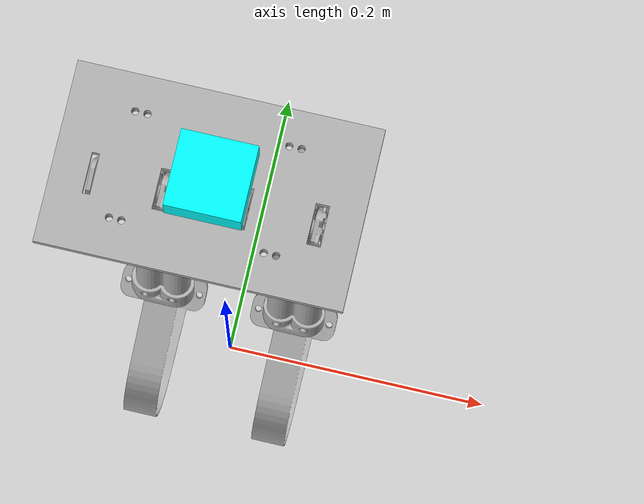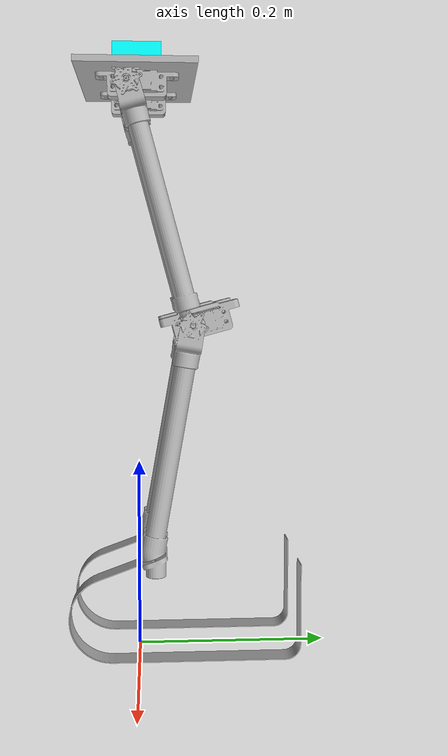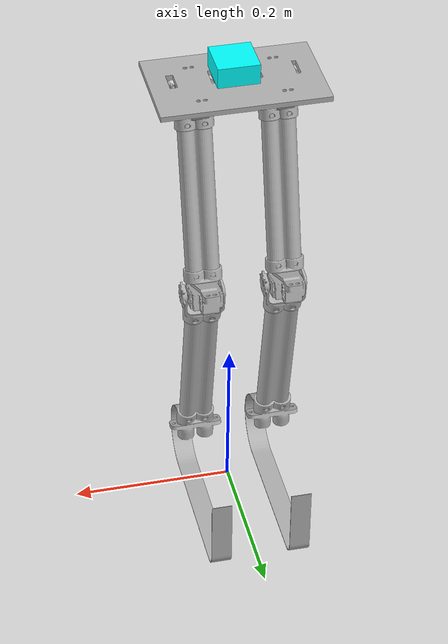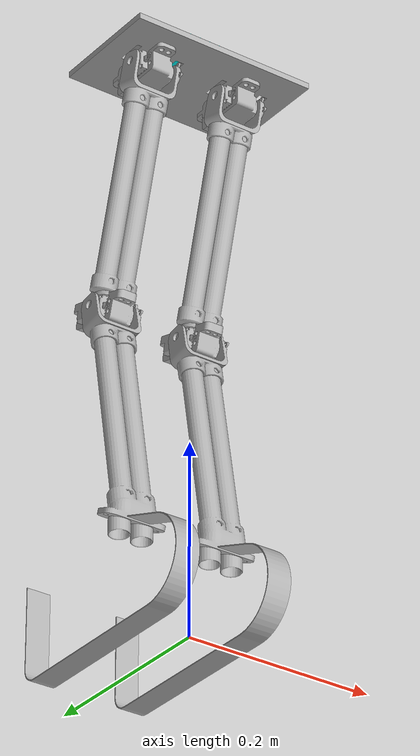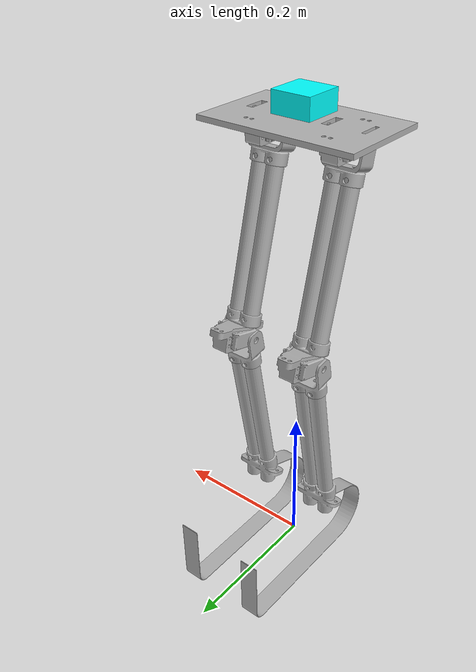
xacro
<?xml version="1.0" ?>
<robot name="pguin" xmlns:xacro="http://www.ros.org/wiki/xacro">

<xacro:include filename="$(find pguin_description)/urdf/materials.xacro" />
<xacro:include filename="$(find pguin_description)/urdf/pguin.trans" />
<xacro:include filename="$(find pguin_description)/urdf/pguin.gazebo" />

<link name="base_link">
  <inertial>
    <origin xyz="-0.0018364831356047012 0.00017651104964880673 0.6032172976873532" rpy="0 0 0"/>
    <mass value="0.2"/>
    <inertia ixx="0.001424" iyy="0.003857" izz="0.005273" ixy="-2e-06" iyz="-0.0" ixz="0.0"/>
  </inertial>
  <visual>
    <origin xyz="0 0 0" rpy="0 0 0"/>
    <geometry>
      <mesh filename="package://pguin_description/meshes/base_link.stl" scale="0.001 0.001 0.001"/>
    </geometry>
    <material name="silver"/>
  </visual>
  <collision>
    <origin xyz="0 0 0" rpy="0 0 0"/>
    <geometry>
      <mesh filename="package://pguin_description/meshes/base_link.stl" scale="0.001 0.001 0.001"/>
    </geometry>
  </collision>
</link>

<link name="Right_Hip_Joint_1">
  <inertial>
    <origin xyz="-0.024906436199168287 0.005774140785141436 -0.021430165788386857" rpy="0 0 0"/>
    <mass value="0.13224884273497764"/>
    <inertia ixx="3e-05" iyy="6.2e-05" izz="4.9e-05" ixy="1e-06" iyz="4e-06" ixz="-4e-06"/>
  </inertial>
  <visual>
    <origin xyz="0.026981 0.009401 -0.590042" rpy="0 0 0"/>
    <geometry>
      <mesh filename="package://pguin_description/meshes/Right_Hip_Joint_1.stl" scale="0.001 0.001 0.001"/>
    </geometry>
    <material name="silver"/>
  </visual>
  <collision>
    <origin xyz="0.026981 0.009401 -0.590042" rpy="0 0 0"/>
    <geometry>
      <mesh filename="package://pguin_description/meshes/Right_Hip_Joint_1.stl" scale="0.001 0.001 0.001"/>
    </geometry>
  </collision>
</link>

<link name="Left_Hip_Joint_1">
  <inertial>
    <origin xyz="-0.024906436199168575 0.005774140785142075 -0.021430165788386524" rpy="0 0 0"/>
    <mass value="0.13224884273497764"/>
    <inertia ixx="3e-05" iyy="6.2e-05" izz="4.9e-05" ixy="1e-06" iyz="4e-06" ixz="-4e-06"/>
  </inertial>
  <visual>
    <origin xyz="-0.073019 0.009401 -0.590042" rpy="0 0 0"/>
    <geometry>
      <mesh filename="package://pguin_description/meshes/Left_Hip_Joint_1.stl" scale="0.001 0.001 0.001"/>
    </geometry>
    <material name="silver"/>
  </visual>
  <collision>
    <origin xyz="-0.073019 0.009401 -0.590042" rpy="0 0 0"/>
    <geometry>
      <mesh filename="package://pguin_description/meshes/Left_Hip_Joint_1.stl" scale="0.001 0.001 0.001"/>
    </geometry>
  </collision>
</link>

<link name="Right_Knee_Joint_1">
  <inertial>
    <origin xyz="-0.024906185284594987 -0.00382404744459576 -0.0218630519733764" rpy="0 0 0"/>
    <mass value="0.13224884273497764"/>
    <inertia ixx="3e-05" iyy="6.2e-05" izz="4.8e-05" ixy="-1e-06" iyz="-2e-06" ixz="-5e-06"/>
  </inertial>
  <visual>
    <origin xyz="0.026147 -0.055367 -0.348578" rpy="0 0 0"/>
    <geometry>
      <mesh filename="package://pguin_description/meshes/Right_Knee_Joint_1.stl" scale="0.001 0.001 0.001"/>
    </geometry>
    <material name="silver"/>
  </visual>
  <collision>
    <origin xyz="0.026147 -0.055367 -0.348578" rpy="0 0 0"/>
    <geometry>
      <mesh filename="package://pguin_description/meshes/Right_Knee_Joint_1.stl" scale="0.001 0.001 0.001"/>
    </geometry>
  </collision>
</link>

<link name="Left_Knee_Joint_1">
  <inertial>
    <origin xyz="-0.024906185284594935 -0.0038240474445950454 -0.021863051973376624" rpy="0 0 0"/>
    <mass value="0.13224884273497764"/>
    <inertia ixx="3e-05" iyy="6.2e-05" izz="4.8e-05" ixy="-1e-06" iyz="-2e-06" ixz="-5e-06"/>
  </inertial>
  <visual>
    <origin xyz="-0.073853 -0.055367 -0.348578" rpy="0 0 0"/>
    <geometry>
      <mesh filename="package://pguin_description/meshes/Left_Knee_Joint_1.stl" scale="0.001 0.001 0.001"/>
    </geometry>
    <material name="silver"/>
  </visual>
  <collision>
    <origin xyz="-0.073853 -0.055367 -0.348578" rpy="0 0 0"/>
    <geometry>
      <mesh filename="package://pguin_description/meshes/Left_Knee_Joint_1.stl" scale="0.001 0.001 0.001"/>
    </geometry>
  </collision>
</link>

<link name="Right_Hip_1">
  <inertial>
    <origin xyz="0.0055051444518334006 -0.03525548137224349 -0.010968289531952502" rpy="0 0 0"/>
    <mass value="0.3382131060287256"/>
    <inertia ixx="0.000106" iyy="4.7e-05" izz="0.000123" ixy="0.0" iyz="0.0" ixz="-0.0"/>
  </inertial>
  <visual>
    <origin xyz="0.058481 -0.035699 -0.600042" rpy="0 0 0"/>
    <geometry>
      <mesh filename="package://pguin_description/meshes/Right_Hip_1.stl" scale="0.001 0.001 0.001"/>
    </geometry>
    <material name="silver"/>
  </visual>
  <collision>
    <origin xyz="0.058481 -0.035699 -0.600042" rpy="0 0 0"/>
    <geometry>
      <mesh filename="package://pguin_description/meshes/Right_Hip_1.stl" scale="0.001 0.001 0.001"/>
    </geometry>
  </collision>
</link>

<link name="Left_Hip_1">
  <inertial>
    <origin xyz="0.005505144451833151 -0.03525548137224287 -0.010968289531952391" rpy="0 0 0"/>
    <mass value="0.3382131060287256"/>
    <inertia ixx="0.000106" iyy="4.7e-05" izz="0.000123" ixy="0.0" iyz="0.0" ixz="-0.0"/>
  </inertial>
  <visual>
    <origin xyz="-0.041519 -0.035699 -0.600042" rpy="0 0 0"/>
    <geometry>
      <mesh filename="package://pguin_description/meshes/Left_Hip_1.stl" scale="0.001 0.001 0.001"/>
    </geometry>
    <material name="silver"/>
  </visual>
  <collision>
    <origin xyz="-0.041519 -0.035699 -0.600042" rpy="0 0 0"/>
    <geometry>
      <mesh filename="package://pguin_description/meshes/Left_Hip_1.stl" scale="0.001 0.001 0.001"/>
    </geometry>
  </collision>
</link>

<link name="Right_Knee_1">
  <inertial>
    <origin xyz="0.01152506716567727 0.013392757231262632 -0.011871621769302454" rpy="0 0 0"/>
    <mass value="0.39488164057587066"/>
    <inertia ixx="0.000142" iyy="6.6e-05" izz="0.000147" ixy="0.0" iyz="-2.3e-05" ixz="1e-06"/>
  </inertial>
  <visual>
    <origin xyz="0.063883 -0.051201 -0.364026" rpy="0 0 0"/>
    <geometry>
      <mesh filename="package://pguin_description/meshes/Right_Knee_1.stl" scale="0.001 0.001 0.001"/>
    </geometry>
    <material name="silver"/>
  </visual>
  <collision>
    <origin xyz="0.063883 -0.051201 -0.364026" rpy="0 0 0"/>
    <geometry>
      <mesh filename="package://pguin_description/meshes/Right_Knee_1.stl" scale="0.001 0.001 0.001"/>
    </geometry>
  </collision>
</link>

<link name="Left_Knee_1">
  <inertial>
    <origin xyz="0.011525067165677264 0.013392757231263382 -0.011871621769302731" rpy="0 0 0"/>
    <mass value="0.39488164057587066"/>
    <inertia ixx="0.000142" iyy="6.6e-05" izz="0.000147" ixy="0.0" iyz="-2.3e-05" ixz="1e-06"/>
  </inertial>
  <visual>
    <origin xyz="-0.036117 -0.051201 -0.364026" rpy="0 0 0"/>
    <geometry>
      <mesh filename="package://pguin_description/meshes/Left_Knee_1.stl" scale="0.001 0.001 0.001"/>
    </geometry>
    <material name="silver"/>
  </visual>
  <collision>
    <origin xyz="-0.036117 -0.051201 -0.364026" rpy="0 0 0"/>
    <geometry>
      <mesh filename="package://pguin_description/meshes/Left_Knee_1.stl" scale="0.001 0.001 0.001"/>
    </geometry>
  </collision>
</link>

<link name="Right_Calve_1">
  <inertial>
    <origin xyz="0.010319582234751781 0.027995365616378696 -0.10440348943748701" rpy="0 0 0"/>
    <mass value="0.5963863095211966"/>
    <inertia ixx="0.002281" iyy="0.002195" izz="0.000263" ixy="-0.0" iyz="0.000558" ixz="-0.0"/>
  </inertial>
  <visual>
    <origin xyz="0.063811 0.001317 -0.560115" rpy="0 0 0"/>
    <geometry>
      <mesh filename="package://pguin_description/meshes/Right_Calve_1.stl" scale="0.001 0.001 0.001"/>
    </geometry>
    <material name="silver"/>
  </visual>
  <collision>
    <origin xyz="0.063811 0.001317 -0.560115" rpy="0 0 0"/>
    <geometry>
      <mesh filename="package://pguin_description/meshes/Right_Calve_1.stl" scale="0.001 0.001 0.001"/>
    </geometry>
  </collision>
</link>

<link name="Left_Calve_1">
  <inertial>
    <origin xyz="0.010319582234752385 0.027995365616379442 -0.10440348943748701" rpy="0 0 0"/>
    <mass value="0.5963863095211965"/>
    <inertia ixx="0.002281" iyy="0.002195" izz="0.000263" ixy="-0.0" iyz="0.000558" ixz="-0.0"/>
  </inertial>
  <visual>
    <origin xyz="-0.036189 0.001317 -0.560115" rpy="0 0 0"/>
    <geometry>
      <mesh filename="package://pguin_description/meshes/Left_Calve_1.stl" scale="0.001 0.001 0.001"/>
    </geometry>
    <material name="silver"/>
  </visual>
  <collision>
    <origin xyz="-0.036189 0.001317 -0.560115" rpy="0 0 0"/>
    <geometry>
      <mesh filename="package://pguin_description/meshes/Left_Calve_1.stl" scale="0.001 0.001 0.001"/>
    </geometry>
  </collision>
</link>

<link name="Right_Thigh_1">
  <inertial>
    <origin xyz="0.010274296374107449 -0.02078061248727975 -0.14623337605984496" rpy="0 0 0"/>
    <mass value="0.87606134894097"/>
    <inertia ixx="0.006587" iyy="0.005821" izz="0.001035" ixy="-2e-06" iyz="-0.000335" ixz="-2e-06"/>
  </inertial>
  <visual>
    <origin xyz="0.062977 -0.050046 -0.318038" rpy="0 0 0"/>
    <geometry>
      <mesh filename="package://pguin_description/meshes/Right_Thigh_1.stl" scale="0.001 0.001 0.001"/>
    </geometry>
    <material name="silver"/>
  </visual>
  <collision>
    <origin xyz="0.062977 -0.050046 -0.318038" rpy="0 0 0"/>
    <geometry>
      <mesh filename="package://pguin_description/meshes/Right_Thigh_1.stl" scale="0.001 0.001 0.001"/>
    </geometry>
  </collision>
</link>

<link name="Left_Thigh_1">
  <inertial>
    <origin xyz="0.010321394852051573 -0.020776990506645415 -0.14623401471275493" rpy="0 0 0"/>
    <mass value="0.8760613489409663"/>
    <inertia ixx="0.006587" iyy="0.005821" izz="0.001035" ixy="-1e-06" iyz="-0.000334" ixz="0.0"/>
  </inertial>
  <visual>
    <origin xyz="-0.037023 -0.050046 -0.318038" rpy="0 0 0"/>
    <geometry>
      <mesh filename="package://pguin_description/meshes/Left_Thigh_1.stl" scale="0.001 0.001 0.001"/>
    </geometry>
    <material name="silver"/>
  </visual>
  <collision>
    <origin xyz="-0.037023 -0.050046 -0.318038" rpy="0 0 0"/>
    <geometry>
      <mesh filename="package://pguin_description/meshes/Left_Thigh_1.stl" scale="0.001 0.001 0.001"/>
    </geometry>
  </collision>
</link>

<joint name="Revolute20" type="revolute">
  <dynamics damping="1" friction="0.5"/>
  <origin xyz="0.0315 -0.0451 -0.01" rpy="0 0 0"/>
  <parent link="Right_Hip_1"/>
  <child link="Right_Hip_Joint_1"/>
  <axis xyz="-1.0 -0.0 -0.0"/>
  <limit upper="1.22173" lower="-0.523599" effort="100" velocity="100"/>
</joint>

<joint name="Revolute26" type="revolute">
  <dynamics damping="1" friction="0.5"/>
  <origin xyz="0.0315 -0.0451 -0.01" rpy="0 0 0"/>
  <parent link="Left_Hip_1"/>
  <child link="Left_Hip_Joint_1"/>
  <axis xyz="-1.0 -0.0 -0.0"/>
  <limit upper="1.22173" lower="-0.523599" effort="100" velocity="100"/>
</joint>

<joint name="Revolute32" type="revolute">
  <dynamics damping="1" friction="0.5"/>
  <origin xyz="0.037736 0.004166 -0.015448" rpy="0 0 0"/>
  <parent link="Right_Knee_1"/>
  <child link="Right_Knee_Joint_1"/>
  <axis xyz="-1.0 -0.0 -0.0"/>
  <limit upper="1.22173" lower="-0.523599" effort="100" velocity="100"/>
</joint>

<joint name="Revolute33" type="revolute">
  <dynamics damping="1" friction="0.5"/>
  <origin xyz="0.037736 0.004166 -0.015448" rpy="0 0 0"/>
  <parent link="Left_Knee_1"/>
  <child link="Left_Knee_Joint_1"/>
  <axis xyz="-1.0 -0.0 -0.0"/>
  <limit upper="1.22173" lower="-0.523599" effort="100" velocity="100"/>
</joint>

<joint name="Rigid36" type="fixed">
  <origin xyz="-0.058481 0.035699 0.600042" rpy="0 0 0"/>
  <parent link="base_link"/>
  <child link="Right_Hip_1"/>
</joint>

<joint name="Rigid37" type="fixed">
  <origin xyz="0.041519 0.035699 0.600042" rpy="0 0 0"/>
  <parent link="base_link"/>
  <child link="Left_Hip_1"/>
</joint>

<joint name="Rigid38" type="fixed">
  <origin xyz="-7.2e-05 0.052518 -0.196089" rpy="0 0 0"/>
  <parent link="Right_Calve_1"/>
  <child link="Right_Knee_1"/>
</joint>

<joint name="Rigid39" type="fixed">
  <origin xyz="-7.2e-05 0.052518 -0.196089" rpy="0 0 0"/>
  <parent link="Left_Calve_1"/>
  <child link="Left_Knee_1"/>
</joint>

<joint name="Rigid40" type="fixed">
  <origin xyz="-0.03683 0.008084 -0.029927" rpy="0 0 0"/>
  <parent link="Right_Hip_Joint_1"/>
  <child link="Right_Calve_1"/>
</joint>

<joint name="Rigid41" type="fixed">
  <origin xyz="-0.03683 0.008084 -0.029927" rpy="0 0 0"/>
  <parent link="Left_Hip_Joint_1"/>
  <child link="Left_Calve_1"/>
</joint>

<joint name="Rigid 42" type="fixed">
  <origin xyz="-0.03683 -0.005321 -0.03054" rpy="0 0 0"/>
  <parent link="Right_Knee_Joint_1"/>
  <child link="Right_Thigh_1"/>
</joint>

<joint name="Rigid 43" type="fixed">
  <origin xyz="-0.03683 -0.005321 -0.03054" rpy="0 0 0"/>
  <parent link="Left_Knee_Joint_1"/>
  <child link="Left_Thigh_1"/>
</joint>

 <link name="my_link">
   <inertial>
     <origin xyz="0 0 0.5" rpy="0 0 0"/>
     <mass value="1.5"/>
     <inertia ixx="0"  ixy="0"  ixz="0" iyy="0" iyz="0" izz="0" />
   </inertial>

   <visual>
     <origin xyz="0 0 0" rpy="0 0 0" />
     <geometry>
       <box size="0.05 0.05 0.025" />
     </geometry>
     <material name="Cyan">
       <color rgba="0 1.0 1.0 1.0"/>
     </material>
   </visual>

   <collision>
     <origin xyz="0 0 0" rpy="0 0 0"/>
     <geometry>
       <box size="0.05 0.05 0.025" />
     </geometry>
   </collision>
 </link>

<joint name="Slide01" type="prismatic">
  <dynamics damping="1" friction="0.5"/>
  <origin xyz="0 0 0.625" rpy="0 0 0"/>
  <parent link="base_link"/>
  <child link="my_link"/>
  <limit lower="-2" higher="2" effort="100" velocity="2" />
</joint>

</robot>

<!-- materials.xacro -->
<robot name="pguin" xmlns:xacro="http://www.ros.org/wiki/xacro" >

<material name="silver">
  <color rgba="0.700 0.700 0.700 1.000"/>
</material>

</robot>

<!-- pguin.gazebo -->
<robot name="pguin" xmlns:xacro="http://www.ros.org/wiki/xacro" >

<xacro:property name="body_color" value="Gazebo/Silver" />

<gazebo>
  <plugin name="gazebo_ros_control" filename="libgazebo_ros_control.so">
    <robotNamespace>/pguin</robotNamespace>
  </plugin>
</gazebo>
<gazebo reference="base_link">
  <material>${body_color}</material>
  <mu1>0.2</mu1>
  <mu2>0.2</mu2>
  <selfCollide>true</selfCollide>
  <gravity>true</gravity>
</gazebo>

<gazebo reference="Weight">
  <material>${body_color}</material>
  <mu1>0.2</mu1>
  <mu2>0.2</mu2>
  <selfCollide>true</selfCollide>
</gazebo>

<gazebo reference="Right_Hip_Joint_1">
  <material>${body_color}</material>
  <mu1>0.2</mu1>
  <mu2>0.2</mu2>
  <selfCollide>true</selfCollide>
</gazebo>

<gazebo reference="Left_Hip_Joint_1">
  <material>${body_color}</material>
  <mu1>0.2</mu1>
  <mu2>0.2</mu2>
  <selfCollide>true</selfCollide>
</gazebo>

<gazebo reference="Right_Knee_Joint_1">
  <material>${body_color}</material>
  <mu1>0.2</mu1>
  <mu2>0.2</mu2>
  <selfCollide>true</selfCollide>
</gazebo>

<gazebo reference="Left_Knee_Joint_1">
  <material>${body_color}</material>
  <mu1>0.2</mu1>
  <mu2>0.2</mu2>
  <selfCollide>true</selfCollide>
</gazebo>

<gazebo reference="Right_Hip_1">
  <material>${body_color}</material>
  <mu1>0.2</mu1>
  <mu2>0.2</mu2>
  <selfCollide>true</selfCollide>
</gazebo>

<gazebo reference="Left_Hip_1">
  <material>${body_color}</material>
  <mu1>0.2</mu1>
  <mu2>0.2</mu2>
  <selfCollide>true</selfCollide>
</gazebo>

<gazebo reference="Right_Knee_1">
  <material>${body_color}</material>
  <mu1>0.2</mu1>
  <mu2>0.2</mu2>
  <selfCollide>true</selfCollide>
</gazebo>

<gazebo reference="Left_Knee_1">
  <material>${body_color}</material>
  <mu1>0.2</mu1>
  <mu2>0.2</mu2>
  <selfCollide>true</selfCollide>
</gazebo>

<gazebo reference="Right_Calve_1">
  <material>${body_color}</material>
  <mu1>0.2</mu1>
  <mu2>0.2</mu2>
  <selfCollide>true</selfCollide>
</gazebo>

<gazebo reference="Left_Calve_1">
  <material>${body_color}</material>
  <mu1>0.2</mu1>
  <mu2>0.2</mu2>
  <selfCollide>true</selfCollide>
</gazebo>

<gazebo reference="Right_Thigh_1">
  <material>${body_color}</material>
  <mu1>0.2</mu1>
  <mu2>0.2</mu2>
  <selfCollide>true</selfCollide>
</gazebo>

<gazebo reference="Left_Thigh_1">
  <material>${body_color}</material>
  <mu1>0.2</mu1>
  <mu2>0.2</mu2>
  <selfCollide>true</selfCollide>
</gazebo>

</robot>
